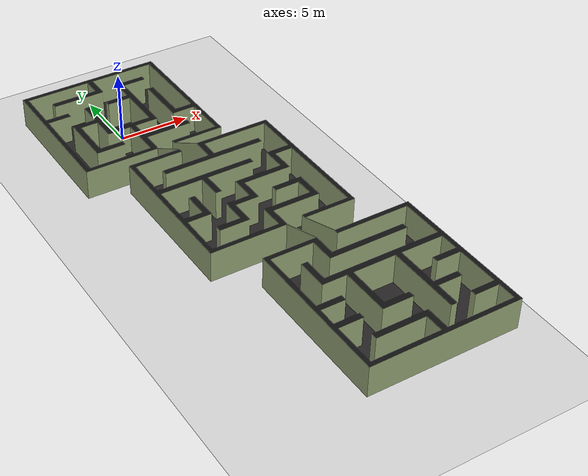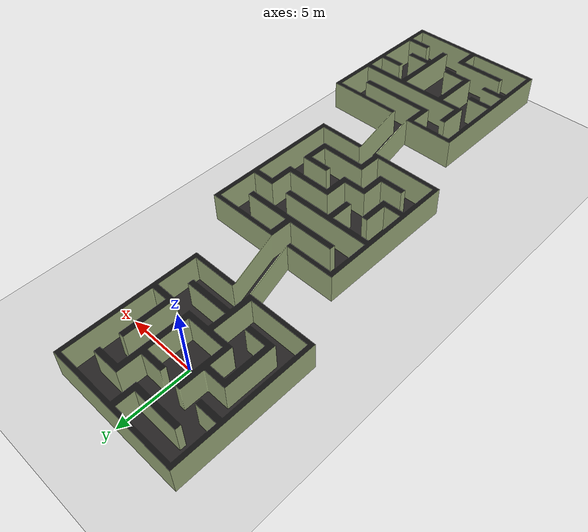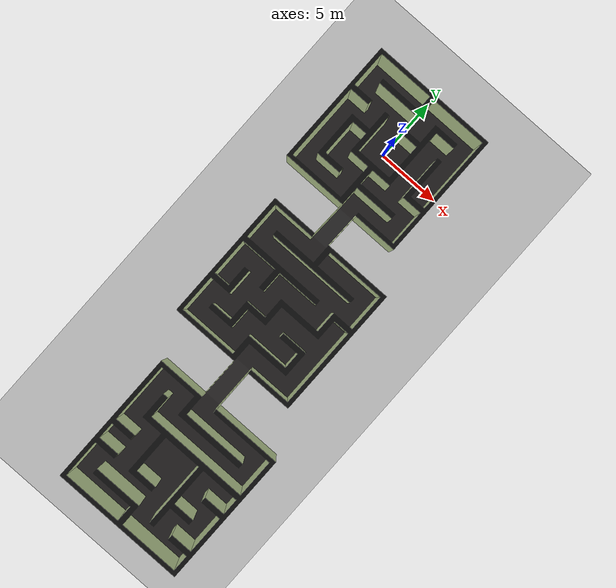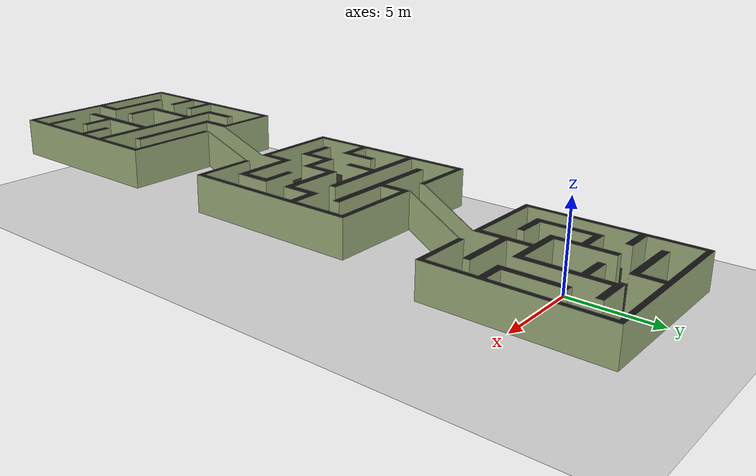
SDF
<sdf version='1.6'>
  <world name='default'>
    <light name='sun' type='directional'>
      <cast_shadows>1</cast_shadows>
      <pose frame=''>0 0 10 0 -0 0</pose>
      <diffuse>0.8 0.8 0.8 1</diffuse>
      <specular>0.2 0.2 0.2 1</specular>
      <attenuation>
        <range>1000</range>
        <constant>0.9</constant>
        <linear>0.01</linear>
        <quadratic>0.001</quadratic>
      </attenuation>
      <direction>-0.5 0.1 -0.9</direction>
    </light>
    <model name='ground_plane'>
      <static>1</static>
      <link name='link'>
        <collision name='collision'>
          <geometry>
            <plane>
              <normal>0 0 1</normal>
              <size>100 100</size>
            </plane>
          </geometry>
          <surface>
            <friction>
              <ode>
                <mu>100</mu>
                <mu2>50</mu2>
              </ode>
              <torsional>
                <ode/>
              </torsional>
            </friction>
            <contact>
              <ode/>
            </contact>
            <bounce/>
          </surface>
          <max_contacts>10</max_contacts>
        </collision>
        <visual name='visual'>
          <cast_shadows>0</cast_shadows>
          <geometry>
            <plane>
              <normal>0 0 1</normal>
              <size>100 100</size>
            </plane>
          </geometry>
          <material>
            <script>
              <uri>file://media/materials/scripts/gazebo.material</uri>
              <name>Gazebo/Grey</name>
            </script>
          </material>
        </visual>
        <self_collide>0</self_collide>
        <enable_wind>0</enable_wind>
        <kinematic>0</kinematic>
      </link>
    </model>
    <gravity>0 0 -9.8</gravity>
    <magnetic_field>6e-06 2.3e-05 -4.2e-05</magnetic_field>
    <atmosphere type='adiabatic'/>
    <physics name='default_physics' default='0' type='ode'>
      <max_step_size>0.001</max_step_size>
      <real_time_factor>1</real_time_factor>
      <real_time_update_rate>1000</real_time_update_rate>
    </physics>
    <scene>
      <ambient>0.4 0.4 0.4 1</ambient>
      <background>0.7 0.7 0.7 1</background>
      <shadows>1</shadows>
    </scene>
    <wind/>
    <spherical_coordinates>
      <surface_model>EARTH_WGS84</surface_model>
      <latitude_deg>0</latitude_deg>
      <longitude_deg>0</longitude_deg>
      <elevation>0</elevation>
      <heading_deg>0</heading_deg>
    </spherical_coordinates>
    <gui fullscreen='0'>
      <camera name='user_camera'>
        <pose frame=''>0.969901 -1.05177 14.6562 -0 1.09699 -1.57261</pose>
        <view_controller>orbit</view_controller>
        <projection_type>perspective</projection_type>
      </camera>
    </gui>
    <light name='user_point_light_0' type='point'>
      <pose frame=''>0 0 5 0 -0 0</pose>
      <diffuse>0.5 0.5 0.5 1</diffuse>
      <specular>0.1 0.1 0.1 1</specular>
      <attenuation>
        <range>20</range>
        <constant>0.5</constant>
        <linear>0.01</linear>
        <quadratic>0.001</quadratic>
      </attenuation>
      <cast_shadows>0</cast_shadows>
      <direction>0 0 -1</direction>
    </light>
    <light name='user_point_light_0_clone' type='point'>
      <pose frame=''>1.6 -13 7 0 -0 0</pose>
      <diffuse>0.498039 0.498039 0.498039 1</diffuse>
      <specular>0.0980392 0.0980392 0.0980392 1</specular>
      <direction>0 0 -1</direction>
      <attenuation>
        <range>20</range>
        <constant>0.5</constant>
        <linear>0.01</linear>
        <quadratic>0.001</quadratic>
      </attenuation>
      <cast_shadows>0</cast_shadows>
    </light>
    <light name='user_point_light_0_clone_0' type='point'>
      <pose frame=''>2.6 -26 8 0 -0 0</pose>
      <diffuse>0.498039 0.498039 0.498039 1</diffuse>
      <specular>0.0980392 0.0980392 0.0980392 1</specular>
      <direction>0 0 -1</direction>
      <attenuation>
        <range>20</range>
        <constant>0.5</constant>
        <linear>0.01</linear>
        <quadratic>0.001</quadratic>
      </attenuation>
      <cast_shadows>0</cast_shadows>
    </light>

    <include>
      <name>maze-3leves</name>
      <uri>model://maze-3levels</uri>
      <pose>0 0 0 0 0 0</pose>
    </include>

    <plugin name='gazebo_connection_plugin' filename='libgazebo_connection_plugin-.so'/>
  </world>
</sdf>

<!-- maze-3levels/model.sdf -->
<sdf version="1.5">
  <model name="maze-3levels">
    <static>true</static>
    <pose>0 0 0 0 0 0</pose>
    <link name="link">
      <collision name="collision">
        <geometry>
          <mesh>
            <uri>model://maze-3levels/Maze-3levels.dae</uri>
            <scale>1 1 1</scale>
          </mesh>
        </geometry>
      </collision>
      <visual name="visual">
        <geometry>
          <mesh>
            <uri>model://maze-3levels/Maze-3levels.dae</uri>
            <scale>1 1 1</scale>
          </mesh>
        </geometry>
        <cast_shadows>false</cast_shadows>
        <material>
        </material>
      </visual>
    </link>
  </model>
</sdf>
